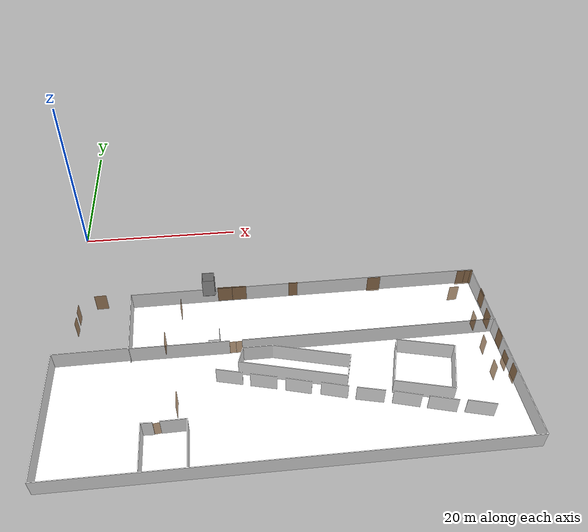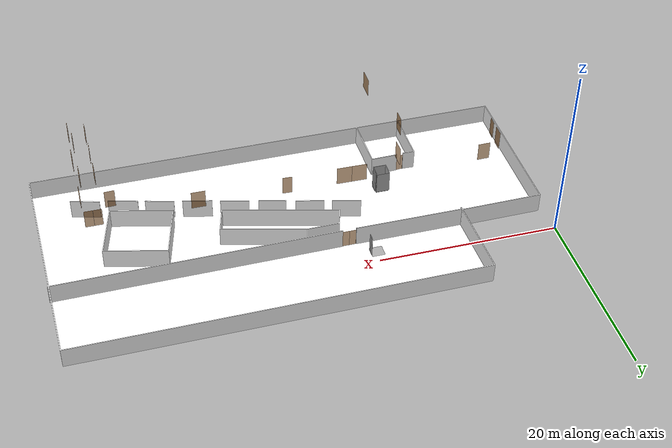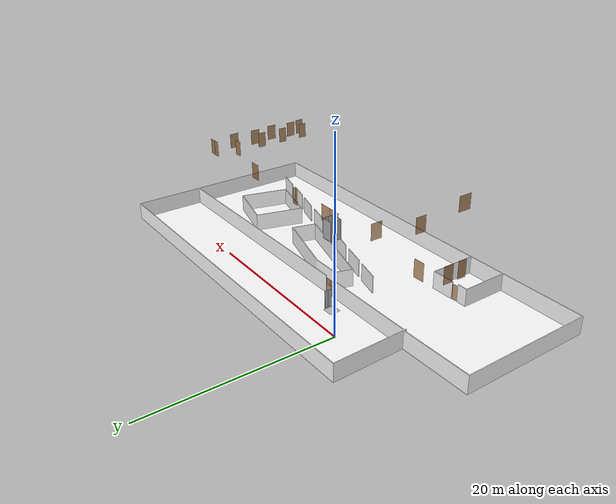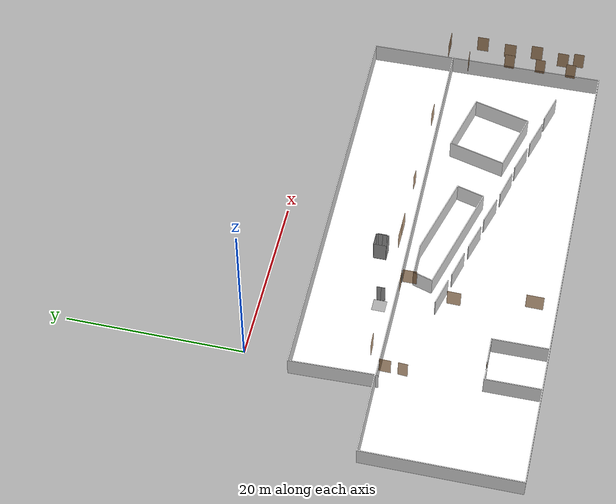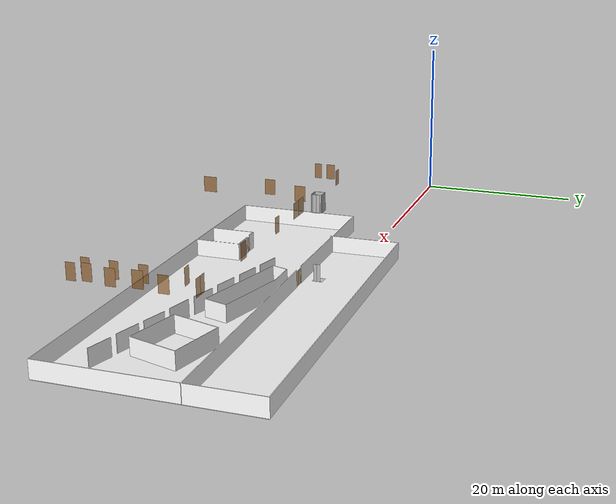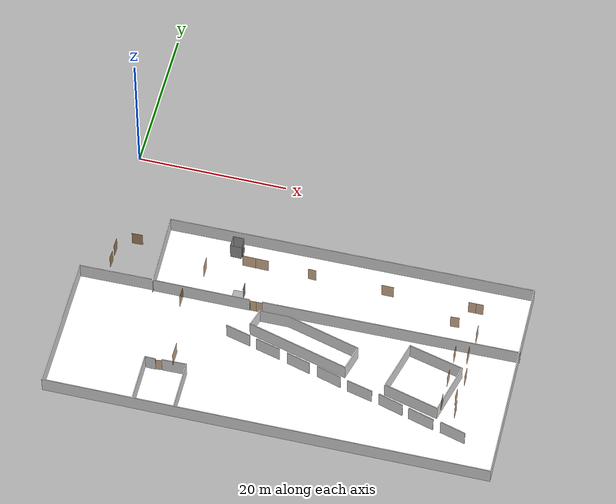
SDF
<sdf version="1.7">
 <world name="world">
  <scene><ambient>0.8 0.8 0.8 1.0</ambient><background>0 0 0</background><grid>false</grid></scene>
  <include><uri>model://sun</uri></include>
  <model name="meet_rm1_door">
   <pose>47.51631323812991 -28.34884641998447 0.0 0 0 1.5718276491743373</pose>
   <link name="right">
    <pose>0 0 1.11 0 0 0</pose>
    <visual name="right_visual">
     <geometry><box><size>1.1717125415689573 0.03 2.2</size></box></geometry>
     <material><ambient>0.5 0.25 0 0.6</ambient><diffuse>0.5 0.25 0 0.6</diffuse></material>
    </visual>
    <collision name="right_collision">
     <geometry><box><size>1.1717125415689573 0.03 2.2</size></box></geometry>
     <surface><contact><collide_bitmask>0x02</collide_bitmask></contact></surface>
    </collision>
    <inertial>
     <mass>50.0</mass>
     <inertia><ixx>20.17041666666667</ixx><iyy>25.887126166958275</iyy><izz>5.7242095002916065</izz></inertia>
    </inertial>
   </link>
   <joint name="right_joint" type="revolute">
    <parent>world</parent>
    <child>right</child>
    <axis><xyz>0 0 -1</xyz><limit><lower>0</lower><upper>1.57</upper></limit></axis>
    <pose>0.5908562707844787 0 0 0 0 0</pose>
   </joint>
   <plugin name="door" filename="libdoor.so">
    <v_max_door>0.5</v_max_door>
    <a_max_door>0.3</a_max_door>
    <a_nom_door>0.15</a_nom_door>
    <dx_min_door>0.01</dx_min_door>
    <f_max_door>500.0</f_max_door>
    <door name="meet_rm1_door" type="SwingDoor" left_joint_name="empty_joint" right_joint_name="right_joint"/>
   </plugin>
  </model>
  <model name="meet_rm2_door">
   <pose>47.515703874942844 -24.653511360203165 0.0 0 0 1.536323122894629</pose>
   <link name="right">
    <pose>0 0 1.11 0 0 0</pose>
    <visual name="right_visual">
     <geometry><box><size>1.1599063531548095 0.03 2.2</size></box></geometry>
     <material><ambient>0.5 0.25 0 0.6</ambient><diffuse>0.5 0.25 0 0.6</diffuse></material>
    </visual>
    <collision name="right_collision">
     <geometry><box><size>1.1599063531548095 0.03 2.2</size></box></geometry>
     <surface><contact><collide_bitmask>0x02</collide_bitmask></contact></surface>
    </collision>
    <inertial>
     <mass>50.0</mass>
     <inertia><ixx>20.17041666666667</ixx><iyy>25.772428117037045</iyy><izz>5.609511450370373</izz></inertia>
    </inertial>
   </link>
   <joint name="right_joint" type="revolute">
    <parent>world</parent>
    <child>right</child>
    <axis><xyz>0 0 -1</xyz><limit><lower>0</lower><upper>1.57</upper></limit></axis>
    <pose>0.5849531765774048 0 0 0 0 0</pose>
   </joint>
   <plugin name="door" filename="libdoor.so">
    <v_max_door>0.5</v_max_door>
    <a_max_door>0.3</a_max_door>
    <a_nom_door>0.15</a_nom_door>
    <dx_min_door>0.01</dx_min_door>
    <f_max_door>500.0</f_max_door>
    <door name="meet_rm2_door" type="SwingDoor" left_joint_name="empty_joint" right_joint_name="right_joint"/>
   </plugin>
  </model>
  <model name="meet_rm3_door">
   <pose>47.515703874942844 -20.90394297677266 0.0 0 0 1.5707963267948966</pose>
   <link name="right">
    <pose>0 0 1.11 0 0 0</pose>
    <visual name="right_visual">
     <geometry><box><size>1.1995336952029285 0.03 2.2</size></box></geometry>
     <material><ambient>0.5 0.25 0 0.6</ambient><diffuse>0.5 0.25 0 0.6</diffuse></material>
    </visual>
    <collision name="right_collision">
     <geometry><box><size>1.1995336952029285 0.03 2.2</size></box></geometry>
     <surface><contact><collide_bitmask>0x02</collide_bitmask></contact></surface>
    </collision>
    <inertial>
     <mass>50.0</mass>
     <inertia><ixx>20.17041666666667</ixx><iyy>26.162004524696638</iyy><izz>5.999087858029967</izz></inertia>
    </inertial>
   </link>
   <joint name="right_joint" type="revolute">
    <parent>world</parent>
    <child>right</child>
    <axis><xyz>0 0 -1</xyz><limit><lower>0</lower><upper>1.57</upper></limit></axis>
    <pose>0.6047668476014643 0 0 0 0 0</pose>
   </joint>
   <plugin name="door" filename="libdoor.so">
    <v_max_door>0.5</v_max_door>
    <a_max_door>0.3</a_max_door>
    <a_nom_door>0.15</a_nom_door>
    <dx_min_door>0.01</dx_min_door>
    <f_max_door>500.0</f_max_door>
    <door name="meet_rm3_door" type="SwingDoor" left_joint_name="empty_joint" right_joint_name="right_joint"/>
   </plugin>
  </model>
  <model name="office_door">
   <pose>48.62639886120308 -13.381128097499808 0.0 0 0 3.141592653589793</pose>
   <link name="right">
    <pose>0.4993209006732542 0 1.11 0 0 0</pose>
    <visual name="right_visual">
     <geometry><box><size>0.9886418013465084 0.03 2.2</size></box></geometry>
     <material><ambient>0.5 0.25 0 0.6</ambient><diffuse>0.5 0.25 0 0.6</diffuse></material>
    </visual>
    <collision name="right_collision">
     <geometry><box><size>0.9886418013465084 0.03 2.2</size></box></geometry>
     <surface><contact><collide_bitmask>0x02</collide_bitmask></contact></surface>
    </collision>
    <inertial>
     <mass>50.0</mass>
     <inertia><ixx>20.17041666666667</ixx><iyy>24.239219214040293</iyy><izz>4.076302547373621</izz></inertia>
    </inertial>
   </link>
   <joint name="right_joint" type="revolute">
    <parent>world</parent>
    <child>right</child>
    <axis><xyz>0 0 -1</xyz><limit><lower>0</lower><upper>1.57</upper></limit></axis>
    <pose>0.4993209006732542 0 0 0 0 0</pose>
   </joint>
   <link name="left">
    <pose>-0.4993209006732542 0 1.11 0 0 0</pose>
    <visual name="left_visual">
     <geometry><box><size>0.9886418013465084 0.03 2.2</size></box></geometry>
     <material><ambient>0.5 0.25 0 0.6</ambient><diffuse>0.5 0.25 0 0.6</diffuse></material>
    </visual>
    <collision name="left_collision">
     <geometry><box><size>0.9886418013465084 0.03 2.2</size></box></geometry>
     <surface><contact><collide_bitmask>0x02</collide_bitmask></contact></surface>
    </collision>
    <inertial>
     <mass>50.0</mass>
     <inertia><ixx>20.17041666666667</ixx><iyy>24.239219214040293</iyy><izz>4.076302547373621</izz></inertia>
    </inertial>
   </link>
   <joint name="left_joint" type="revolute">
    <parent>world</parent>
    <child>left</child>
    <axis><xyz>0 0 -1</xyz><limit><lower>-1.57</lower><upper>0</upper></limit></axis>
    <pose>-0.4993209006732542 0 0 0 0 0</pose>
   </joint>
   <plugin name="door" filename="libdoor.so">
    <v_max_door>0.5</v_max_door>
    <a_max_door>0.3</a_max_door>
    <a_nom_door>0.15</a_nom_door>
    <dx_min_door>0.01</dx_min_door>
    <f_max_door>500.0</f_max_door>
    <door name="office_door" type="DoubleSwingDoor" left_joint_name="left_joint" right_joint_name="right_joint"/>
   </plugin>
  </model>
  <model name="meet_rm4_door">
   <pose>46.43657390177282 -16.095666992127352 0.0 0 0 0.04995839572194125</pose>
   <link name="right">
    <pose>0 0 1.11 0 0 0</pose>
    <visual name="right_visual">
     <geometry><box><size>1.1663198732433462 0.03 2.2</size></box></geometry>
     <material><ambient>0.5 0.25 0 0.6</ambient><diffuse>0.5 0.25 0 0.6</diffuse></material>
    </visual>
    <collision name="right_collision">
     <geometry><box><size>1.1663198732433462 0.03 2.2</size></box></geometry>
     <surface><contact><collide_bitmask>0x02</collide_bitmask></contact></surface>
    </collision>
    <inertial>
     <mass>50.0</mass>
     <inertia><ixx>20.17041666666667</ixx><iyy>25.834591861343235</iyy><izz>5.671675194676563</izz></inertia>
    </inertial>
   </link>
   <joint name="right_joint" type="revolute">
    <parent>world</parent>
    <child>right</child>
    <axis><xyz>0 0 -1</xyz><limit><lower>0</lower><upper>1.57</upper></limit></axis>
    <pose>0.5881599366216731 0 0 0 0 0</pose>
   </joint>
   <plugin name="door" filename="libdoor.so">
    <v_max_door>0.5</v_max_door>
    <a_max_door>0.3</a_max_door>
    <a_nom_door>0.15</a_nom_door>
    <dx_min_door>0.01</dx_min_door>
    <f_max_door>500.0</f_max_door>
    <door name="meet_rm4_door" type="SwingDoor" left_joint_name="empty_joint" right_joint_name="right_joint"/>
   </plugin>
  </model>
  <model name="meet_rm5_door">
   <pose>49.64017027996569 -17.27743113637668 0.0 0 0 -1.5587508827883279</pose>
   <link name="right">
    <pose>0 0 1.11 0 0 0</pose>
    <visual name="right_visual">
     <geometry><box><size>1.3458095764538105 0.03 2.2</size></box></geometry>
     <material><ambient>0.5 0.25 0 0.6</ambient><diffuse>0.5 0.25 0 0.6</diffuse></material>
    </visual>
    <collision name="right_collision">
     <geometry><box><size>1.3458095764538105 0.03 2.2</size></box></geometry>
     <surface><contact><collide_bitmask>0x02</collide_bitmask></contact></surface>
    </collision>
    <inertial>
     <mass>50.0</mass>
     <inertia><ixx>20.17041666666667</ixx><iyy>27.71334756697828</iyy><izz>7.5504309003116035</izz></inertia>
    </inertial>
   </link>
   <joint name="right_joint" type="revolute">
    <parent>world</parent>
    <child>right</child>
    <axis><xyz>0 0 -1</xyz><limit><lower>0</lower><upper>1.57</upper></limit></axis>
    <pose>0.6779047882269053 0 0 0 0 0</pose>
   </joint>
   <plugin name="door" filename="libdoor.so">
    <v_max_door>0.5</v_max_door>
    <a_max_door>0.3</a_max_door>
    <a_nom_door>0.15</a_nom_door>
    <dx_min_door>0.01</dx_min_door>
    <f_max_door>500.0</f_max_door>
    <door name="meet_rm5_door" type="SwingDoor" left_joint_name="empty_joint" right_joint_name="right_joint"/>
   </plugin>
  </model>
  <model name="meet_rm6_door">
   <pose>49.22362701566165 -20.70760615789882 0.0 0 0 -1.5707963267948966</pose>
   <link name="right">
    <pose>0 0 1.11 0 0 0</pose>
    <visual name="right_visual">
     <geometry><box><size>1.4110697729999637 0.03 2.2</size></box></geometry>
     <material><ambient>0.5 0.25 0 0.6</ambient><diffuse>0.5 0.25 0 0.6</diffuse></material>
    </visual>
    <collision name="right_collision">
     <geometry><box><size>1.4110697729999637 0.03 2.2</size></box></geometry>
     <surface><contact><collide_bitmask>0x02</collide_bitmask></contact></surface>
    </collision>
    <inertial>
     <mass>50.0</mass>
     <inertia><ixx>20.17041666666667</ixx><iyy>28.462991267809045</iyy><izz>8.300074601142372</izz></inertia>
    </inertial>
   </link>
   <joint name="right_joint" type="revolute">
    <parent>world</parent>
    <child>right</child>
    <axis><xyz>0 0 -1</xyz><limit><lower>0</lower><upper>1.57</upper></limit></axis>
    <pose>0.7105348864999819 0 0 0 0 0</pose>
   </joint>
   <plugin name="door" filename="libdoor.so">
    <v_max_door>0.5</v_max_door>
    <a_max_door>0.3</a_max_door>
    <a_nom_door>0.15</a_nom_door>
    <dx_min_door>0.01</dx_min_door>
    <f_max_door>500.0</f_max_door>
    <door name="meet_rm6_door" type="SwingDoor" left_joint_name="empty_joint" right_joint_name="right_joint"/>
   </plugin>
  </model>
  <model name="meet_rm7_door">
   <pose>49.61567387984549 -23.91729616796239 0.0 0 0 -1.5707963267948966</pose>
   <link name="right">
    <pose>0 0 1.11 0 0 0</pose>
    <visual name="right_visual">
     <geometry><box><size>1.3620769727595652 0.03 2.2</size></box></geometry>
     <material><ambient>0.5 0.25 0 0.6</ambient><diffuse>0.5 0.25 0 0.6</diffuse></material>
    </visual>
    <collision name="right_collision">
     <geometry><box><size>1.3620769727595652 0.03 2.2</size></box></geometry>
     <surface><contact><collide_bitmask>0x02</collide_bitmask></contact></surface>
    </collision>
    <inertial>
     <mass>50.0</mass>
     <inertia><ixx>20.17041666666667</ixx><iyy>27.896890332174426</iyy><izz>7.733973665507755</izz></inertia>
    </inertial>
   </link>
   <joint name="right_joint" type="revolute">
    <parent>world</parent>
    <child>right</child>
    <axis><xyz>0 0 -1</xyz><limit><lower>0</lower><upper>1.57</upper></limit></axis>
    <pose>0.6860384863797826 0 0 0 0 0</pose>
   </joint>
   <plugin name="door" filename="libdoor.so">
    <v_max_door>0.5</v_max_door>
    <a_max_door>0.3</a_max_door>
    <a_nom_door>0.15</a_nom_door>
    <dx_min_door>0.01</dx_min_door>
    <f_max_door>500.0</f_max_door>
    <door name="meet_rm7_door" type="SwingDoor" left_joint_name="empty_joint" right_joint_name="right_joint"/>
   </plugin>
  </model>
  <model name="meet_rm8_door">
   <pose>49.11984375971531 -27.179339180983625 0.0 0 0 -1.5827017777277619</pose>
   <link name="right">
    <pose>0 0 1.11 0 0 0</pose>
    <visual name="right_visual">
     <geometry><box><size>1.3149539291681898 0.03 2.2</size></box></geometry>
     <material><ambient>0.5 0.25 0 0.6</ambient><diffuse>0.5 0.25 0 0.6</diffuse></material>
    </visual>
    <collision name="right_collision">
     <geometry><box><size>1.3149539291681898 0.03 2.2</size></box></geometry>
     <surface><contact><collide_bitmask>0x02</collide_bitmask></contact></surface>
    </collision>
    <inertial>
     <mass>50.0</mass>
     <inertia><ixx>20.17041666666667</ixx><iyy>27.371265982645255</iyy><izz>7.2083493159785865</izz></inertia>
    </inertial>
   </link>
   <joint name="right_joint" type="revolute">
    <parent>world</parent>
    <child>right</child>
    <axis><xyz>0 0 -1</xyz><limit><lower>0</lower><upper>1.57</upper></limit></axis>
    <pose>0.6624769645840949 0 0 0 0 0</pose>
   </joint>
   <plugin name="door" filename="libdoor.so">
    <v_max_door>0.5</v_max_door>
    <a_max_door>0.3</a_max_door>
    <a_nom_door>0.15</a_nom_door>
    <dx_min_door>0.01</dx_min_door>
    <f_max_door>500.0</f_max_door>
    <door name="meet_rm8_door" type="SwingDoor" left_joint_name="empty_joint" right_joint_name="right_joint"/>
   </plugin>
  </model>
  <model name="meet_rm9_door">
   <pose>49.44317186677446 -29.048360537986873 0.0 0 0 -1.5707963267948966</pose>
   <link name="right">
    <pose>0 0 1.11 0 0 0</pose>
    <visual name="right_visual">
     <geometry><box><size>1.235991024166468 0.03 2.2</size></box></geometry>
     <material><ambient>0.5 0.25 0 0.6</ambient><diffuse>0.5 0.25 0 0.6</diffuse></material>
    </visual>
    <collision name="right_collision">
     <geometry><box><size>1.235991024166468 0.03 2.2</size></box></geometry>
     <surface><contact><collide_bitmask>0x02</collide_bitmask></contact></surface>
    </collision>
    <inertial>
     <mass>50.0</mass>
     <inertia><ixx>20.17041666666667</ixx><iyy>26.531974215916982</iyy><izz>6.369057549250311</izz></inertia>
    </inertial>
   </link>
   <joint name="right_joint" type="revolute">
    <parent>world</parent>
    <child>right</child>
    <axis><xyz>0 0 -1</xyz><limit><lower>0</lower><upper>1.57</upper></limit></axis>
    <pose>0.622995512083234 0 0 0 0 0</pose>
   </joint>
   <plugin name="door" filename="libdoor.so">
    <v_max_door>0.5</v_max_door>
    <a_max_door>0.3</a_max_door>
    <a_nom_door>0.15</a_nom_door>
    <dx_min_door>0.01</dx_min_door>
    <f_max_door>500.0</f_max_door>
    <door name="meet_rm9_door" type="SwingDoor" left_joint_name="empty_joint" right_joint_name="right_joint"/>
   </plugin>
  </model>
  <model name="cargo_lift_door">
   <pose>36.95787729577413 -13.476153933929126 0.0 0 0 -0.00869769057234856</pose>
   <link name="right">
    <pose>0 0 1.11 0 0 0</pose>
    <visual name="right_visual">
     <geometry><box><size>1.5994064626995876 0.03 2.2</size></box></geometry>
     <material><ambient>0.5 0.25 0 0.6</ambient><diffuse>0.5 0.25 0 0.6</diffuse></material>
    </visual>
    <collision name="right_collision">
     <geometry><box><size>1.5994064626995876 0.03 2.2</size></box></geometry>
     <surface><contact><collide_bitmask>0x02</collide_bitmask></contact></surface>
    </collision>
    <inertial>
     <mass>50.0</mass>
     <inertia><ixx>20.17041666666667</ixx><iyy>30.8254209705217</iyy><izz>10.662504303855034</izz></inertia>
    </inertial>
   </link>
   <joint name="right_joint" type="revolute">
    <parent>world</parent>
    <child>right</child>
    <axis><xyz>0 0 -1</xyz><limit><lower>0</lower><upper>1.57</upper></limit></axis>
    <pose>0.8047032313497938 0 0 0 0 0</pose>
   </joint>
   <plugin name="door" filename="libdoor.so">
    <v_max_door>0.5</v_max_door>
    <a_max_door>0.3</a_max_door>
    <a_nom_door>0.15</a_nom_door>
    <dx_min_door>0.01</dx_min_door>
    <f_max_door>500.0</f_max_door>
    <door name="cargo_lift_door" type="SwingDoor" left_joint_name="empty_joint" right_joint_name="right_joint"/>
   </plugin>
  </model>
  <model name="board_rm_door">
   <pose>0.864059588887987 -17.213831030023382 0.0 0 0 -1.6373130544308765</pose>
   <link name="right">
    <pose>0 0 1.11 0 0 0</pose>
    <visual name="right_visual">
     <geometry><box><size>1.070753919567047 0.03 2.2</size></box></geometry>
     <material><ambient>0.5 0.25 0 0.6</ambient><diffuse>0.5 0.25 0 0.6</diffuse></material>
    </visual>
    <collision name="right_collision">
     <geometry><box><size>1.070753919567047 0.03 2.2</size></box></geometry>
     <surface><contact><collide_bitmask>0x02</collide_bitmask></contact></surface>
    </collision>
    <inertial>
     <mass>50.0</mass>
     <inertia><ixx>20.17041666666667</ixx><iyy>24.94380815111748</iyy><izz>4.78089148445081</izz></inertia>
    </inertial>
   </link>
   <joint name="right_joint" type="revolute">
    <parent>world</parent>
    <child>right</child>
    <axis><xyz>0 0 -1</xyz><limit><lower>0</lower><upper>1.57</upper></limit></axis>
    <pose>0.5403769597835235 0 0 0 0 0</pose>
   </joint>
   <plugin name="door" filename="libdoor.so">
    <v_max_door>0.5</v_max_door>
    <a_max_door>0.3</a_max_door>
    <a_nom_door>0.15</a_nom_door>
    <dx_min_door>0.01</dx_min_door>
    <f_max_door>500.0</f_max_door>
    <door name="board_rm_door" type="SwingDoor" left_joint_name="empty_joint" right_joint_name="right_joint"/>
   </plugin>
  </model>
  <model name="meeting_rm_door">
   <pose>0.8888171446597881 -15.269405331214458 0.0 0 0 1.5535450574440104</pose>
   <link name="right">
    <pose>0 0 1.11 0 0 0</pose>
    <visual name="right_visual">
     <geometry><box><size>1.2838879863551 0.03 2.2</size></box></geometry>
     <material><ambient>0.5 0.25 0 0.6</ambient><diffuse>0.5 0.25 0 0.6</diffuse></material>
    </visual>
    <collision name="right_collision">
     <geometry><box><size>1.2838879863551 0.03 2.2</size></box></geometry>
     <surface><contact><collide_bitmask>0x02</collide_bitmask></contact></surface>
    </collision>
    <inertial>
     <mass>50.0</mass>
     <inertia><ixx>20.17041666666667</ixx><iyy>27.034868172945647</iyy><izz>6.8719515062789736</izz></inertia>
    </inertial>
   </link>
   <joint name="right_joint" type="revolute">
    <parent>world</parent>
    <child>right</child>
    <axis><xyz>0 0 -1</xyz><limit><lower>0</lower><upper>1.57</upper></limit></axis>
    <pose>0.64694399317755 0 0 0 0 0</pose>
   </joint>
   <plugin name="door" filename="libdoor.so">
    <v_max_door>0.5</v_max_door>
    <a_max_door>0.3</a_max_door>
    <a_nom_door>0.15</a_nom_door>
    <dx_min_door>0.01</dx_min_door>
    <f_max_door>500.0</f_max_door>
    <door name="meeting_rm_door" type="SwingDoor" left_joint_name="empty_joint" right_joint_name="right_joint"/>
   </plugin>
  </model>
  <model name="office_door_2">
   <pose>3.331249260695577 -13.351164839072753 0.0 0 0 0.03123602589362966</pose>
   <link name="right">
    <pose>0 0 1.11 0 0 0</pose>
    <visual name="right_visual">
     <geometry><box><size>1.4182431372928412 0.03 2.2</size></box></geometry>
     <material><ambient>0.5 0.25 0 0.6</ambient><diffuse>0.5 0.25 0 0.6</diffuse></material>
    </visual>
    <collision name="right_collision">
     <geometry><box><size>1.4182431372928412 0.03 2.2</size></box></geometry>
     <surface><contact><collide_bitmask>0x02</collide_bitmask></contact></surface>
    </collision>
    <inertial>
     <mass>50.0</mass>
     <inertia><ixx>20.17041666666667</ixx><iyy>28.547556651992675</iyy><izz>8.384639985326006</izz></inertia>
    </inertial>
   </link>
   <joint name="right_joint" type="prismatic">
    <parent>world</parent>
    <child>right</child>
    <axis>
     <xyz>1 0 0</xyz>
     <limit><lower>0.0</lower><upper>1.4282431372928412</upper><effort>500.0</effort></limit>
    </axis>
   </joint>
   <plugin name="door" filename="libdoor.so">
    <v_max_door>0.2</v_max_door>
    <a_max_door>0.2</a_max_door>
    <a_nom_door>0.08</a_nom_door>
    <dx_min_door>0.001</dx_min_door>
    <f_max_door>100.0</f_max_door>
    <door name="office_door_2" type="SlidingDoor" left_joint_name="empty_joint" right_joint_name="right_joint"/>
   </plugin>
  </model>
  <model name="main_door">
   <pose>19.254640574649954 -13.34411363647952 0.0 0 0 3.129622883143067</pose>
   <link name="right">
    <pose>0.8771018575841038 0 1.11 0 0 0</pose>
    <visual name="right_visual">
     <geometry><box><size>1.7442037151682075 0.03 2.2</size></box></geometry>
     <material><ambient>0.5 0.25 0 0.6</ambient><diffuse>0.5 0.25 0 0.6</diffuse></material>
    </visual>
    <collision name="right_collision">
     <geometry><box><size>1.7442037151682075 0.03 2.2</size></box></geometry>
     <surface><contact><collide_bitmask>0x02</collide_bitmask></contact></surface>
    </collision>
    <inertial>
     <mass>50.0</mass>
     <inertia><ixx>20.17041666666667</ixx><iyy>32.84269416669408</iyy><izz>12.679777500027408</izz></inertia>
    </inertial>
   </link>
   <joint name="right_joint" type="prismatic">
    <parent>world</parent>
    <child>right</child>
    <axis>
     <xyz>1 0 0</xyz>
     <limit><lower>0.0</lower><upper>1.7542037151682075</upper><effort>500.0</effort></limit>
    </axis>
   </joint>
   <link name="left">
    <pose>-0.8771018575841038 0 1.11 0 0 0</pose>
    <visual name="left_visual">
     <geometry><box><size>1.7442037151682075 0.03 2.2</size></box></geometry>
     <material><ambient>0.5 0.25 0 0.6</ambient><diffuse>0.5 0.25 0 0.6</diffuse></material>
    </visual>
    <collision name="left_collision">
     <geometry><box><size>1.7442037151682075 0.03 2.2</size></box></geometry>
     <surface><contact><collide_bitmask>0x02</collide_bitmask></contact></surface>
    </collision>
    <inertial>
     <mass>50.0</mass>
     <inertia><ixx>20.17041666666667</ixx><iyy>32.84269416669408</iyy><izz>12.679777500027408</izz></inertia>
    </inertial>
   </link>
   <joint name="left_joint" type="prismatic">
    <parent>world</parent>
    <child>left</child>
    <axis>
     <xyz>1 0 0</xyz>
     <limit><lower>-1.7542037151682075</lower><upper>0.0</upper><effort>500.0</effort></limit>
    </axis>
   </joint>
   <plugin name="door" filename="libdoor.so">
    <v_max_door>0.2</v_max_door>
    <a_max_door>0.2</a_max_door>
    <a_nom_door>0.08</a_nom_door>
    <dx_min_door>0.001</dx_min_door>
    <f_max_door>100.0</f_max_door>
    <door name="main_door" type="DoubleSlidingDoor" left_joint_name="left_joint" right_joint_name="right_joint"/>
   </plugin>
  </model>
  <model name="cafe_door_1">
   <pose>12.654593074745055 -29.5300186114235 0.0 0 0 -1.5807043503451466</pose>
   <link name="right">
    <pose>0 0 1.11 0 0 0</pose>
    <visual name="right_visual">
     <geometry><box><size>1.9580959511073435 0.03 2.2</size></box></geometry>
     <material><ambient>0.5 0.25 0 0.6</ambient><diffuse>0.5 0.25 0 0.6</diffuse></material>
    </visual>
    <collision name="right_collision">
     <geometry><box><size>1.9580959511073435 0.03 2.2</size></box></geometry>
     <surface><contact><collide_bitmask>0x02</collide_bitmask></contact></surface>
    </collision>
    <inertial>
     <mass>50.0</mass>
     <inertia><ixx>20.17041666666667</ixx><iyy>36.14224897392906</iyy><izz>15.979332307262386</izz></inertia>
    </inertial>
   </link>
   <joint name="right_joint" type="prismatic">
    <parent>world</parent>
    <child>right</child>
    <axis>
     <xyz>1 0 0</xyz>
     <limit><lower>0.0</lower><upper>1.9680959511073435</upper><effort>500.0</effort></limit>
    </axis>
   </joint>
   <plugin name="door" filename="libdoor.so">
    <v_max_door>0.2</v_max_door>
    <a_max_door>0.2</a_max_door>
    <a_nom_door>0.08</a_nom_door>
    <dx_min_door>0.001</dx_min_door>
    <f_max_door>100.0</f_max_door>
    <door name="cafe_door_1" type="SlidingDoor" left_joint_name="empty_joint" right_joint_name="right_joint"/>
   </plugin>
  </model>
  <model name="cafe_door_2">
   <pose>13.044028382412879 -15.5315011431615 0.0 0 0 1.5833281481840809</pose>
   <link name="right">
    <pose>0 0 1.11 0 0 0</pose>
    <visual name="right_visual">
     <geometry><box><size>1.5849505722999089 0.03 2.2</size></box></geometry>
     <material><ambient>0.5 0.25 0 0.6</ambient><diffuse>0.5 0.25 0 0.6</diffuse></material>
    </visual>
    <collision name="right_collision">
     <geometry><box><size>1.5849505722999089 0.03 2.2</size></box></geometry>
     <surface><contact><collide_bitmask>0x02</collide_bitmask></contact></surface>
    </collision>
    <inertial>
     <mass>50.0</mass>
     <inertia><ixx>20.17041666666667</ixx><iyy>30.63361798597421</iyy><izz>10.470701319307537</izz></inertia>
    </inertial>
   </link>
   <joint name="right_joint" type="prismatic">
    <parent>world</parent>
    <child>right</child>
    <axis>
     <xyz>1 0 0</xyz>
     <limit><lower>0.0</lower><upper>1.5949505722999089</upper><effort>500.0</effort></limit>
    </axis>
   </joint>
   <plugin name="door" filename="libdoor.so">
    <v_max_door>0.2</v_max_door>
    <a_max_door>0.2</a_max_door>
    <a_nom_door>0.08</a_nom_door>
    <dx_min_door>0.001</dx_min_door>
    <f_max_door>100.0</f_max_door>
    <door name="cafe_door_2" type="SlidingDoor" left_joint_name="empty_joint" right_joint_name="right_joint"/>
   </plugin>
  </model>
  <model name="stairs_door">
   <pose>11.22701182083183 -20.80588773478477 0.0 0 0 1.558882494320271</pose>
   <link name="right">
    <pose>0 0 1.11 0 0 0</pose>
    <visual name="right_visual">
     <geometry><box><size>1.5390763369633196 0.03 2.2</size></box></geometry>
     <material><ambient>0.5 0.25 0 0.6</ambient><diffuse>0.5 0.25 0 0.6</diffuse></material>
    </visual>
    <collision name="right_collision">
     <geometry><box><size>1.5390763369633196 0.03 2.2</size></box></geometry>
     <surface><contact><collide_bitmask>0x02</collide_bitmask></contact></surface>
    </collision>
    <inertial>
     <mass>50.0</mass>
     <inertia><ixx>20.17041666666667</ixx><iyy>30.036483212501796</iyy><izz>9.873566545835125</izz></inertia>
    </inertial>
   </link>
   <joint name="right_joint" type="prismatic">
    <parent>world</parent>
    <child>right</child>
    <axis>
     <xyz>1 0 0</xyz>
     <limit><lower>0.0</lower><upper>1.5490763369633196</upper><effort>500.0</effort></limit>
    </axis>
   </joint>
   <plugin name="door" filename="libdoor.so">
    <v_max_door>0.2</v_max_door>
    <a_max_door>0.2</a_max_door>
    <a_nom_door>0.08</a_nom_door>
    <dx_min_door>0.001</dx_min_door>
    <f_max_door>100.0</f_max_door>
    <door name="stairs_door" type="SlidingDoor" left_joint_name="empty_joint" right_joint_name="right_joint"/>
   </plugin>
  </model>
  <model name="locker_rm_door">
   <pose>26.82921650407018 -13.32948891998985 0.0 0 0 3.094012591037232</pose>
   <link name="right">
    <pose>0 0 1.11 0 0 0</pose>
    <visual name="right_visual">
     <geometry><box><size>1.0793814205173002 0.03 2.2</size></box></geometry>
     <material><ambient>0.5 0.25 0 0.6</ambient><diffuse>0.5 0.25 0 0.6</diffuse></material>
    </visual>
    <collision name="right_collision">
     <geometry><box><size>1.0793814205173002 0.03 2.2</size></box></geometry>
     <surface><contact><collide_bitmask>0x02</collide_bitmask></contact></surface>
    </collision>
    <inertial>
     <mass>50.0</mass>
     <inertia><ixx>20.17041666666667</ixx><iyy>25.02110104565811</iyy><izz>4.858184378991437</izz></inertia>
    </inertial>
   </link>
   <joint name="right_joint" type="revolute">
    <parent>world</parent>
    <child>right</child>
    <axis><xyz>0 0 -1</xyz><limit><lower>0</lower><upper>1.57</upper></limit></axis>
    <pose>0.5446907102586501 0 0 0 0 0</pose>
   </joint>
   <plugin name="door" filename="libdoor.so">
    <v_max_door>0.5</v_max_door>
    <a_max_door>0.3</a_max_door>
    <a_nom_door>0.15</a_nom_door>
    <dx_min_door>0.01</dx_min_door>
    <f_max_door>500.0</f_max_door>
    <door name="locker_rm_door" type="SwingDoor" left_joint_name="empty_joint" right_joint_name="right_joint"/>
   </plugin>
  </model>
  <model name="main_entrance_door_lvl9">
   <pose>19.268236557665332 -13.456990091303892 -10.0 0 0 -3.1293838657320174</pose>
   <link name="right">
    <pose>0.44244180624485 0 1.11 0 0 0</pose>
    <visual name="right_visual">
     <geometry><box><size>0.8748836124897 0.03 2.2</size></box></geometry>
     <material><ambient>0.5 0.25 0 0.6</ambient><diffuse>0.5 0.25 0 0.6</diffuse></material>
    </visual>
    <collision name="right_collision">
     <geometry><box><size>0.8748836124897 0.03 2.2</size></box></geometry>
     <surface><contact><collide_bitmask>0x02</collide_bitmask></contact></surface>
    </collision>
    <inertial>
     <mass>50.0</mass>
     <inertia><ixx>20.17041666666667</ixx><iyy>23.355922230845955</iyy><izz>3.193005564179282</izz></inertia>
    </inertial>
   </link>
   <joint name="right_joint" type="prismatic">
    <parent>world</parent>
    <child>right</child>
    <axis>
     <xyz>1 0 0</xyz>
     <limit><lower>0.0</lower><upper>0.8848836124897</upper><effort>500.0</effort></limit>
    </axis>
   </joint>
   <link name="left">
    <pose>-0.44244180624485 0 1.11 0 0 0</pose>
    <visual name="left_visual">
     <geometry><box><size>0.8748836124897 0.03 2.2</size></box></geometry>
     <material><ambient>0.5 0.25 0 0.6</ambient><diffuse>0.5 0.25 0 0.6</diffuse></material>
    </visual>
    <collision name="left_collision">
     <geometry><box><size>0.8748836124897 0.03 2.2</size></box></geometry>
     <surface><contact><collide_bitmask>0x02</collide_bitmask></contact></surface>
    </collision>
    <inertial>
     <mass>50.0</mass>
     <inertia><ixx>20.17041666666667</ixx><iyy>23.355922230845955</iyy><izz>3.193005564179282</izz></inertia>
    </inertial>
   </link>
   <joint name="left_joint" type="prismatic">
    <parent>world</parent>
    <child>left</child>
    <axis>
     <xyz>1 0 0</xyz>
     <limit><lower>-0.8848836124897</lower><upper>0.0</upper><effort>500.0</effort></limit>
    </axis>
   </joint>
   <plugin name="door" filename="libdoor.so">
    <v_max_door>0.2</v_max_door>
    <a_max_door>0.2</a_max_door>
    <a_nom_door>0.08</a_nom_door>
    <dx_min_door>0.001</dx_min_door>
    <f_max_door>100.0</f_max_door>
    <door name="main_entrance_door_lvl9" type="DoubleSlidingDoor" left_joint_name="left_joint" right_joint_name="right_joint"/>
   </plugin>
  </model>
  <model name="lab_door_lvl9">
   <pose>9.163216433602024 -25.402481355780303 -10.0 0 0 -3.029774255734204</pose>
   <link name="right">
    <pose>0 0 1.11 0 0 0</pose>
    <visual name="right_visual">
     <geometry><box><size>0.9366361429906468 0.03 2.2</size></box></geometry>
     <material><ambient>0.5 0.25 0 0.6</ambient><diffuse>0.5 0.25 0 0.6</diffuse></material>
    </visual>
    <collision name="right_collision">
     <geometry><box><size>0.9366361429906468 0.03 2.2</size></box></geometry>
     <surface><contact><collide_bitmask>0x02</collide_bitmask></contact></surface>
    </collision>
    <inertial>
     <mass>50.0</mass>
     <inertia><ixx>20.17041666666667</ixx><iyy>23.822030268151654</iyy><izz>3.659113601484981</izz></inertia>
    </inertial>
   </link>
   <joint name="right_joint" type="revolute">
    <parent>world</parent>
    <child>right</child>
    <axis><xyz>0 0 -1</xyz><limit><lower>0</lower><upper>1.57</upper></limit></axis>
    <pose>0.4733180714953234 0 0 0 0 0</pose>
   </joint>
   <plugin name="door" filename="libdoor.so">
    <v_max_door>0.5</v_max_door>
    <a_max_door>0.3</a_max_door>
    <a_nom_door>0.15</a_nom_door>
    <dx_min_door>0.01</dx_min_door>
    <f_max_door>500.0</f_max_door>
    <door name="lab_door_lvl9" type="SwingDoor" left_joint_name="empty_joint" right_joint_name="right_joint"/>
   </plugin>
  </model>
  <include><name>building_L9</name><uri>model://building_L9</uri><pose>0 0 -10.0 0 0 0</pose></include>
  <model name="ShaftDoor_Lift 1_L10_door1">
   <pose>17.16089213625023 -11.58067660701158 0.0 0 0 1.57</pose>
   <link name="right_door">
    <pose>0.25 0 1.25 0 0 0</pose>
    <visual name="right_door_visual">
     <geometry><box><size>0.5 0.03 2.5</size></box></geometry>
     <material>
      <ambient>0.5 0.5 0.5 1</ambient>
      <diffuse>0.7 0.7 0.7 1</diffuse>
      <specular>0.6 0.6 0.6 1</specular>
      <emissive>0.1 0.1 0.1 1</emissive>
     </material>
    </visual>
    <collision name="right_door_collision">
     <geometry><box><size>0.5 0.03 2.5</size></box></geometry>
     <surface><contact><collide_bitmask>0x02</collide_bitmask></contact></surface>
    </collision>
   </link>
   <joint name="right_joint" type="prismatic">
    <parent>world</parent>
    <child>right_door</child>
    <axis><xyz>1 0 0</xyz><limit><lower>0</lower><upper>0.5</upper></limit></axis>
   </joint>
   <link name="left_door">
    <pose>-0.25 0 1.25 0 0 0</pose>
    <visual name="left_door_visual">
     <geometry><box><size>0.5 0.03 2.5</size></box></geometry>
     <material>
      <ambient>0.5 0.5 0.5 1</ambient>
      <diffuse>0.7 0.7 0.7 1</diffuse>
      <specular>0.6 0.6 0.6 1</specular>
      <emissive>0.1 0.1 0.1 1</emissive>
     </material>
    </visual>
    <collision name="left_door_collision">
     <geometry><box><size>0.5 0.03 2.5</size></box></geometry>
     <surface><contact><collide_bitmask>0x02</collide_bitmask></contact></surface>
    </collision>
   </link>
   <joint name="left_joint" type="prismatic">
    <parent>world</parent>
    <child>left_door</child>
    <axis><xyz>1 0 0</xyz><limit><lower>-0.5</lower><upper>0</upper></limit></axis>
   </joint>
   <link name="ramp">
    <pose>0 0 -0.025 0 0 0</pose>
    <visual name="ramp_visual">
     <geometry><box><size>1.0 0.1 0.05</size></box></geometry>
     <material>
      <ambient>0.5 0.5 0.5 1</ambient>
      <diffuse>0.7 0.7 0.7 1</diffuse>
      <specular>0.6 0.6 0.6 1</specular>
      <emissive>0.1 0.1 0.1 1</emissive>
     </material>
    </visual>
    <collision name="ramp_collision">
     <geometry><box><size>1.0 0.1 0.05</size></box></geometry>
     <surface><contact><collide_bitmask>0x02</collide_bitmask></contact></surface>
    </collision>
   </link>
   <joint name="ramp_joint" type="fixed"><parent>world</parent><child>ramp</child></joint>
   <plugin name="door" filename="libdoor.so">
    <v_max_door>0.3</v_max_door>
    <a_max_door>0.2</a_max_door>
    <a_nom_door>0.1</a_nom_door>
    <dx_min_door>0.0001</dx_min_door>
    <f_max_door>35.0</f_max_door>
    <door left_joint_name="left_joint" name="ShaftDoor_Lift 1_L10_door1" right_joint_name="right_joint" type="DoubleSlidingDoor"/>
   </plugin>
  </model>
  <model name="ShaftDoor_Lift 1_L9_door1">
   <pose>17.16089213625023 -11.58067660701158 -10.0 0 0 1.57</pose>
   <link name="right_door">
    <pose>0.25 0 1.25 0 0 0</pose>
    <visual name="right_door_visual">
     <geometry><box><size>0.5 0.03 2.5</size></box></geometry>
     <material>
      <ambient>0.5 0.5 0.5 1</ambient>
      <diffuse>0.7 0.7 0.7 1</diffuse>
      <specular>0.6 0.6 0.6 1</specular>
      <emissive>0.1 0.1 0.1 1</emissive>
     </material>
    </visual>
    <collision name="right_door_collision">
     <geometry><box><size>0.5 0.03 2.5</size></box></geometry>
     <surface><contact><collide_bitmask>0x02</collide_bitmask></contact></surface>
    </collision>
   </link>
   <joint name="right_joint" type="prismatic">
    <parent>world</parent>
    <child>right_door</child>
    <axis><xyz>1 0 0</xyz><limit><lower>0</lower><upper>0.5</upper></limit></axis>
   </joint>
   <link name="left_door">
    <pose>-0.25 0 1.25 0 0 0</pose>
    <visual name="left_door_visual">
     <geometry><box><size>0.5 0.03 2.5</size></box></geometry>
     <material>
      <ambient>0.5 0.5 0.5 1</ambient>
      <diffuse>0.7 0.7 0.7 1</diffuse>
      <specular>0.6 0.6 0.6 1</specular>
      <emissive>0.1 0.1 0.1 1</emissive>
     </material>
    </visual>
    <collision name="left_door_collision">
     <geometry><box><size>0.5 0.03 2.5</size></box></geometry>
     <surface><contact><collide_bitmask>0x02</collide_bitmask></contact></surface>
    </collision>
   </link>
   <joint name="left_joint" type="prismatic">
    <parent>world</parent>
    <child>left_door</child>
    <axis><xyz>1 0 0</xyz><limit><lower>-0.5</lower><upper>0</upper></limit></axis>
   </joint>
   <link name="ramp">
    <pose>0 0 -0.025 0 0 0</pose>
    <visual name="ramp_visual">
     <geometry><box><size>1.0 0.1 0.05</size></box></geometry>
     <material>
      <ambient>0.5 0.5 0.5 1</ambient>
      <diffuse>0.7 0.7 0.7 1</diffuse>
      <specular>0.6 0.6 0.6 1</specular>
      <emissive>0.1 0.1 0.1 1</emissive>
     </material>
    </visual>
    <collision name="ramp_collision">
     <geometry><box><size>1.0 0.1 0.05</size></box></geometry>
     <surface><contact><collide_bitmask>0x02</collide_bitmask></contact></surface>
    </collision>
   </link>
   <joint name="ramp_joint" type="fixed"><parent>world</parent><child>ramp</child></joint>
   <plugin name="door" filename="libdoor.so">
    <v_max_door>0.3</v_max_door>
    <a_max_door>0.2</a_max_door>
    <a_nom_door>0.1</a_nom_door>
    <dx_min_door>0.0001</dx_min_door>
    <f_max_door>35.0</f_max_door>
    <door left_joint_name="left_joint" name="ShaftDoor_Lift 1_L9_door1" right_joint_name="right_joint" type="DoubleSlidingDoor"/>
   </plugin>
  </model>
  <model name="Lift 1">
   <link name="platform">
    <inertial><mass>1200</mass><inertia><ixx>225.25</ixx><iyy>225.25</iyy><izz>450.0</izz></inertia></inertial>
    <visual name="floor">
     <pose>0 0 -0.025 0 0 0</pose>
     <geometry><box><size>1.5 1.5 0.05</size></box></geometry>
     <material>
      <ambient>0.5 0.5 0.5 1</ambient>
      <diffuse>0.7 0.7 0.7 1</diffuse>
      <specular>0.6 0.6 0.6 1</specular>
      <emissive>0.1 0.1 0.1 1</emissive>
     </material>
    </visual>
    <collision name="floor">
     <pose>0 0 -0.025 0 0 0</pose>
     <geometry><box><size>1.5 1.5 0.05</size></box></geometry>
     <surface><contact><collide_bitmask>0x01</collide_bitmask></contact></surface>
    </collision>
    <visual name="frontwall1">
     <pose>0.0 0.725 1.25 0 0 0</pose>
     <geometry><box><size>1.5 0.05 2.5</size></box></geometry>
     <material>
      <ambient>0.5 0.5 0.5 1</ambient>
      <diffuse>0.7 0.7 0.7 1</diffuse>
      <specular>0.6 0.6 0.6 1</specular>
      <emissive>0.1 0.1 0.1 1</emissive>
     </material>
    </visual>
    <collision name="frontwall1">
     <pose>0.0 0.725 1.25 0 0 0</pose>
     <geometry><box><size>1.5 0.05 2.5</size></box></geometry>
     <surface><contact><collide_bitmask>0x01</collide_bitmask></contact></surface>
    </collision>
    <visual name="backwall1">
     <pose>0.0 -0.725 1.25 0 0 0</pose>
     <geometry><box><size>1.5 0.05 2.5</size></box></geometry>
     <material>
      <ambient>0.5 0.5 0.5 1</ambient>
      <diffuse>0.7 0.7 0.7 1</diffuse>
      <specular>0.6 0.6 0.6 1</specular>
      <emissive>0.1 0.1 0.1 1</emissive>
     </material>
    </visual>
    <collision name="backwall1">
     <pose>0.0 -0.725 1.25 0 0 0</pose>
     <geometry><box><size>1.5 0.05 2.5</size></box></geometry>
     <surface><contact><collide_bitmask>0x01</collide_bitmask></contact></surface>
    </collision>
    <visual name="leftwall1">
     <pose>-0.725 0.0 1.25 0 0 1.5707963267948966</pose>
     <geometry><box><size>1.4 0.05 2.5</size></box></geometry>
     <material>
      <ambient>0.5 0.5 0.5 1</ambient>
      <diffuse>0.7 0.7 0.7 1</diffuse>
      <specular>0.6 0.6 0.6 1</specular>
      <emissive>0.1 0.1 0.1 1</emissive>
     </material>
    </visual>
    <collision name="leftwall1">
     <pose>-0.725 0.0 1.25 0 0 1.5707963267948966</pose>
     <geometry><box><size>1.4 0.05 2.5</size></box></geometry>
     <surface><contact><collide_bitmask>0x01</collide_bitmask></contact></surface>
    </collision>
    <visual name="rightwall1">
     <pose>0.725 -0.6 1.25 0 0 1.5707963267948966</pose>
     <geometry><box><size>0.19999999999999996 0.05 2.5</size></box></geometry>
     <material>
      <ambient>0.5 0.5 0.5 1</ambient>
      <diffuse>0.7 0.7 0.7 1</diffuse>
      <specular>0.6 0.6 0.6 1</specular>
      <emissive>0.1 0.1 0.1 1</emissive>
     </material>
    </visual>
    <collision name="rightwall1">
     <pose>0.725 -0.6 1.25 0 0 1.5707963267948966</pose>
     <geometry><box><size>0.19999999999999996 0.05 2.5</size></box></geometry>
     <surface><contact><collide_bitmask>0x01</collide_bitmask></contact></surface>
    </collision>
    <visual name="rightwall2">
     <pose>0.725 0.6 1.25 0 0 1.5707963267948966</pose>
     <geometry><box><size>0.19999999999999996 0.05 2.5</size></box></geometry>
     <material>
      <ambient>0.5 0.5 0.5 1</ambient>
      <diffuse>0.7 0.7 0.7 1</diffuse>
      <specular>0.6 0.6 0.6 1</specular>
      <emissive>0.1 0.1 0.1 1</emissive>
     </material>
    </visual>
    <collision name="rightwall2">
     <pose>0.725 0.6 1.25 0 0 1.5707963267948966</pose>
     <geometry><box><size>0.19999999999999996 0.05 2.5</size></box></geometry>
     <surface><contact><collide_bitmask>0x01</collide_bitmask></contact></surface>
    </collision>
   </link>
   <joint name="cabin_joint" type="prismatic">
    <parent>world</parent>
    <child>platform</child>
    <axis><xyz>0 0 1</xyz></axis>
   </joint>
   <model name="CabinDoor_Lift 1_door1">
    <pose>0.725 0.0 0 0 0 1.57</pose>
    <link name="right_door">
     <pose>0.25 0 1.25 0 0 0</pose>
     <visual name="right_door_visual">
      <geometry><box><size>0.5 0.03 2.5</size></box></geometry>
      <material>
       <ambient>0.5 0.5 0.5 1</ambient>
       <diffuse>0.7 0.7 0.7 1</diffuse>
       <specular>0.6 0.6 0.6 1</specular>
       <emissive>0.1 0.1 0.1 1</emissive>
      </material>
     </visual>
     <collision name="right_door_collision">
      <geometry><box><size>0.5 0.03 2.5</size></box></geometry>
      <surface><contact><collide_bitmask>0x02</collide_bitmask></contact></surface>
     </collision>
    </link>
    <joint name="right_joint" type="prismatic">
     <parent>platform</parent>
     <child>right_door</child>
     <axis><xyz>1 0 0</xyz><limit><lower>0</lower><upper>0.5</upper></limit></axis>
    </joint>
    <link name="left_door">
     <pose>-0.25 0 1.25 0 0 0</pose>
     <visual name="left_door_visual">
      <geometry><box><size>0.5 0.03 2.5</size></box></geometry>
      <material>
       <ambient>0.5 0.5 0.5 1</ambient>
       <diffuse>0.7 0.7 0.7 1</diffuse>
       <specular>0.6 0.6 0.6 1</specular>
       <emissive>0.1 0.1 0.1 1</emissive>
      </material>
     </visual>
     <collision name="left_door_collision">
      <geometry><box><size>0.5 0.03 2.5</size></box></geometry>
      <surface><contact><collide_bitmask>0x02</collide_bitmask></contact></surface>
     </collision>
    </link>
    <joint name="left_joint" type="prismatic">
     <parent>platform</parent>
     <child>left_door</child>
     <axis><xyz>1 0 0</xyz><limit><lower>-0.5</lower><upper>0</upper></limit></axis>
    </joint>
    <plugin name="door" filename="libdoor.so">
     <v_max_door>0.3</v_max_door>
     <a_max_door>0.2</a_max_door>
     <a_nom_door>0.1</a_nom_door>
     <dx_min_door>0.0001</dx_min_door>
     <f_max_door>35.0</f_max_door>
     <door left_joint_name="left_joint" name="CabinDoor_Lift 1_door1" right_joint_name="right_joint" type="DoubleSlidingDoor"/>
    </plugin>
   </model>
   <plugin name="lift" filename="liblift.so">
    <lift_name>Lift 1</lift_name>
    <floor name="L10" elevation="0.0">
     <door_pair cabin_door="CabinDoor_Lift 1_door1" shaft_door="ShaftDoor_Lift 1_L10_door1"/>
    </floor>
    <floor name="L9" elevation="-10.0">
     <door_pair cabin_door="CabinDoor_Lift 1_door1" shaft_door="ShaftDoor_Lift 1_L9_door1"/>
    </floor>
    <initial_floor>L9</initial_floor>
    <v_max_cabin>2.0</v_max_cabin>
    <a_max_cabin>1.2</a_max_cabin>
    <a_nom_cabin>1.0</a_nom_cabin>
    <dx_min_cabin>0.001</dx_min_cabin>
    <f_max_cabin>25323.0</f_max_cabin>
    <cabin_joint_name>cabin_joint</cabin_joint_name>
   </plugin>
   <pose>16.36089213625023 -11.58067660701158 0 0 0 0.0</pose>
  </model>
  <rmf_charger_waypoints name="charger_waypoints"/>
 </world>
</sdf>

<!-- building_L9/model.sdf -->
<sdf version="1.7">
  <model name="building_L9">
    <static>true</static>
    <link name="floor_1">
      <visual name="visual">
        <geometry>
          <mesh>
            <uri>model://building_L9/meshes/floor_1.obj</uri>
          </mesh>
        </geometry>
        <material>
          <diffuse>1.0 1.0 1.0</diffuse>
          <specular>0.1 0.1 0.1</specular>
          <pbr>
            <metal>
              <metalness>0.0</metalness>
              <albedo_map>model://building_L9/meshes/blue_linoleum.png</albedo_map>
            </metal>
          </pbr>
          <script>
            <uri>model://building_L9/meshes/</uri>
            <name>floor_1_Diffuse</name>
          </script>
        </material>
      </visual>
      <collision name="collision">
        <geometry>
          <mesh>
            <uri>model://building_L9/meshes/floor_1.obj</uri>
          </mesh>
        </geometry>
        <surface>
          <contact>
            <collide_bitmask>0x01</collide_bitmask>
          </contact>
        </surface>
      </collision>
    </link>
    <link name="wall_1">
      <visual name="wall_1">
        <geometry>
          <mesh>
            <uri>model://building_L9/meshes/wall_1.obj</uri>
          </mesh>
        </geometry>
        <material>
          <diffuse>1.0 1.0 1.0</diffuse>
          <specular>0.1 0.1 0.1</specular>
          <pbr>
            <metal>
              <metalness>0.0</metalness>
              <albedo_map>model://building_L9/meshes/default.png</albedo_map>
            </metal>
          </pbr>
          <script>
            <uri>model://building_L9/meshes/</uri>
            <name>wall_1_Diffuse</name>
          </script>
        </material>
      </visual>
      <collision name="collision">
        <geometry>
          <mesh>
            <uri>model://building_L9/meshes/wall_1.obj</uri>
          </mesh>
        </geometry>
        <surface>
          <contact>
            <collide_bitmask>0x01</collide_bitmask>
          </contact>
        </surface>
      </collision>
    </link>
  </model>
</sdf>
